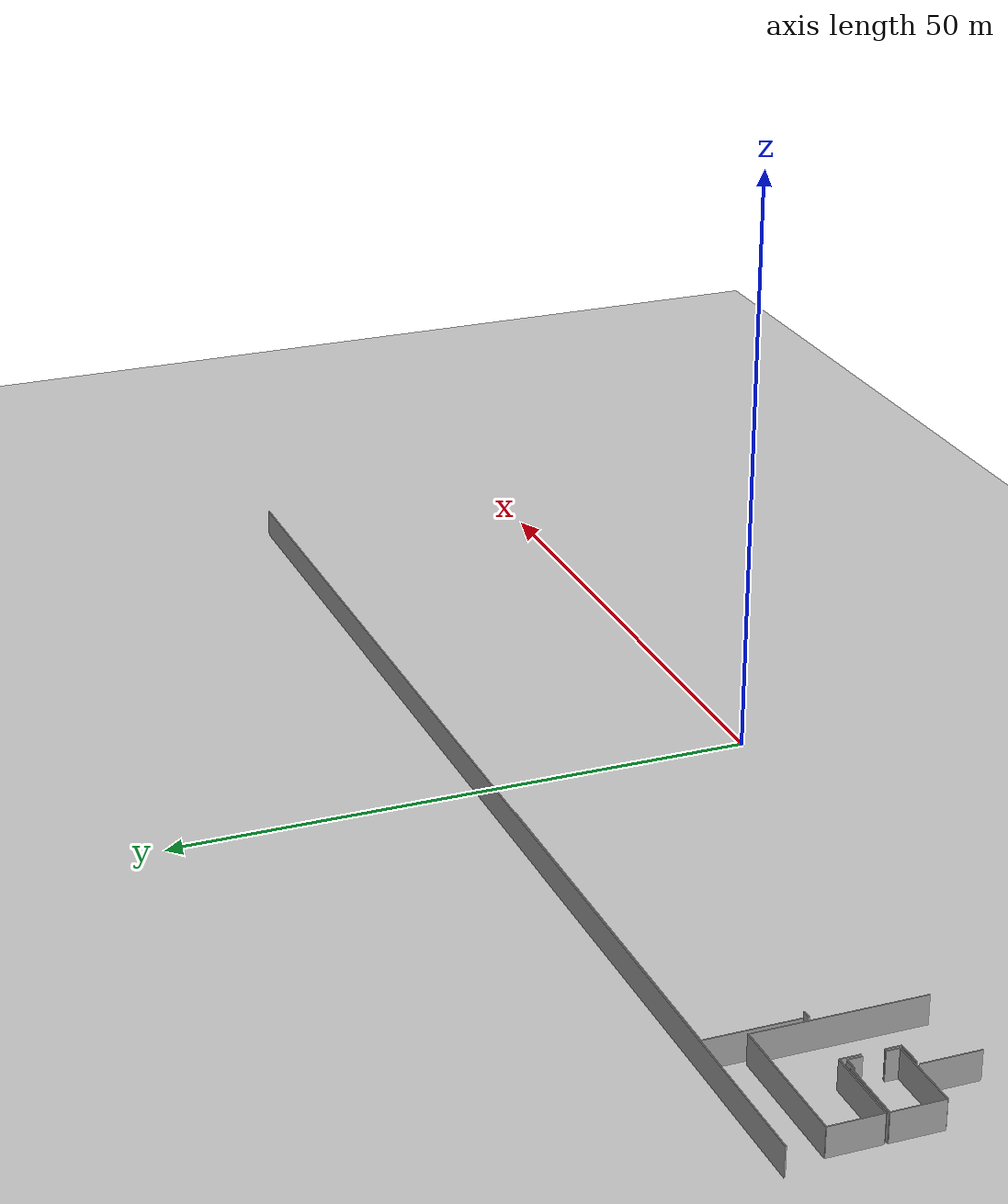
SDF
<sdf version="1.6">
 <world name="default">
  <model name="ground_plane">
   <static>1</static>
   <link name="link">
    <collision name="collision">
     <geometry><plane><normal>0 0 1</normal><size>100 100</size></plane></geometry>
     <surface><friction><ode><mu>100</mu><mu2>50</mu2></ode></friction></surface>
    </collision>
    <visual name="visual">
     <cast_shadows>0</cast_shadows>
     <geometry><plane><normal>0 0 1</normal><size>100 100</size></plane></geometry>
     <material>
      <script><uri>file://media/materials/scripts/gazebo.material</uri><name>Gazebo/Grey</name></script>
     </material>
    </visual>
   </link>
  </model>
  <model name="50057022">
   <static>1</static>
   <link name="Wall_0">
    <collision name="Wall_0_Collision">
     <geometry><box><size>4.35774991319 0.1 2.5</size></box></geometry>
     <pose>2.17887495659 0 1.25 0 0 0</pose>
    </collision>
    <visual name="Wall_0_Visual">
     <pose>2.17887495659 0 1.25 0 0 0</pose>
     <geometry><box><size>4.35774991319 0.1 2.5</size></box></geometry>
     <material>
      <script><uri>file://media/materials/scripts/gazebo.material</uri><name>Gazebo/Grey</name></script>
      <ambient>1 1 1 1</ambient>
     </material>
    </visual>
    <pose>1.04935783863 -12.5339964058 0 0 0 1.57079632679</pose>
   </link>
   <link name="Wall_1">
    <collision name="Wall_1_Collision">
     <geometry><box><size>5.58200072492 0.1 2.5</size></box></geometry>
     <pose>2.79100036246 0 1.25 0 0 0</pose>
    </collision>
    <visual name="Wall_1_Visual">
     <pose>2.79100036246 0 1.25 0 0 0</pose>
     <geometry><box><size>5.58200072492 0.1 2.5</size></box></geometry>
     <material>
      <script><uri>file://media/materials/scripts/gazebo.material</uri><name>Gazebo/Grey</name></script>
      <ambient>1 1 1 1</ambient>
     </material>
    </visual>
    <pose>1.04935783863 -8.17624649264 0 0 0 0.0</pose>
   </link>
   <link name="Wall_2">
    <collision name="Wall_2_Collision">
     <geometry><box><size>0.218616216381 0.1 2.5</size></box></geometry>
     <pose>0.10930810819 0 1.25 0 0 0</pose>
    </collision>
    <visual name="Wall_2_Visual">
     <pose>0.10930810819 0 1.25 0 0 0</pose>
     <geometry><box><size>0.218616216381 0.1 2.5</size></box></geometry>
     <material>
      <script><uri>file://media/materials/scripts/gazebo.material</uri><name>Gazebo/Grey</name></script>
      <ambient>1 1 1 1</ambient>
     </material>
    </visual>
    <pose>6.63135856355 -8.17624649264 0 0 0 -1.57079632679</pose>
   </link>
   <link name="Wall_3">
    <collision name="Wall_3_Collision">
     <geometry><box><size>1.0347834242 0.1 2.5</size></box></geometry>
     <pose>0.517391712101 0 1.25 0 0 0</pose>
    </collision>
    <visual name="Wall_3_Visual">
     <pose>0.517391712101 0 1.25 0 0 0</pose>
     <geometry><box><size>1.0347834242 0.1 2.5</size></box></geometry>
     <material>
      <script><uri>file://media/materials/scripts/gazebo.material</uri><name>Gazebo/Grey</name></script>
      <ambient>1 1 1 1</ambient>
     </material>
    </visual>
    <pose>6.63135856355 -8.39486270902 0 0 0 0.0</pose>
   </link>
   <link name="Wall_4">
    <collision name="Wall_4_Collision">
     <geometry><box><size>1.19510198288 0.1 2.5</size></box></geometry>
     <pose>0.59755099144 0 1.25 0 0 0</pose>
    </collision>
    <visual name="Wall_4_Visual">
     <pose>0.59755099144 0 1.25 0 0 0</pose>
     <geometry><box><size>1.19510198288 0.1 2.5</size></box></geometry>
     <material>
      <script><uri>file://media/materials/scripts/gazebo.material</uri><name>Gazebo/Grey</name></script>
      <ambient>1 1 1 1</ambient>
     </material>
    </visual>
    <pose>7.66614198775 -8.39486270902 0 0 0 -1.57079632679</pose>
   </link>
   <link name="Wall_5">
    <collision name="Wall_5_Collision">
     <geometry><box><size>1.11525953864 0.1 2.5</size></box></geometry>
     <pose>0.557629769319 0 1.25 0 0 0</pose>
    </collision>
    <visual name="Wall_5_Visual">
     <pose>0.557629769319 0 1.25 0 0 0</pose>
     <geometry><box><size>1.11525953864 0.1 2.5</size></box></geometry>
     <material>
      <script><uri>file://media/materials/scripts/gazebo.material</uri><name>Gazebo/Grey</name></script>
      <ambient>1 1 1 1</ambient>
     </material>
    </visual>
    <pose>7.66614198775 -11.3750136239 0 0 0 -1.57079632679</pose>
   </link>
   <link name="Wall_6">
    <collision name="Wall_6_Collision">
     <geometry><box><size>6.6169286076 0.1 2.5</size></box></geometry>
     <pose>3.3084643038 0 1.25 0 0 0</pose>
    </collision>
    <visual name="Wall_6_Visual">
     <pose>3.3084643038 0 1.25 0 0 0</pose>
     <geometry><box><size>6.6169286076 0.1 2.5</size></box></geometry>
     <material>
      <script><uri>file://media/materials/scripts/gazebo.material</uri><name>Gazebo/Grey</name></script>
      <ambient>1 1 1 1</ambient>
     </material>
    </visual>
    <pose>7.66614198775 -12.4902731625 0 0 0 -3.13498482025</pose>
   </link>
   <link name="Wall_11">
    <collision name="Wall_11_Collision">
     <geometry><box><size>4.9407264902 0.1 2.5</size></box></geometry>
     <pose>2.4703632451 0 1.25 0 0 0</pose>
    </collision>
    <visual name="Wall_11_Visual">
     <pose>2.4703632451 0 1.25 0 0 0</pose>
     <geometry><box><size>4.9407264902 0.1 2.5</size></box></geometry>
     <material>
      <script><uri>file://media/materials/scripts/gazebo.material</uri><name>Gazebo/Grey</name></script>
      <ambient>1 1 1 1</ambient>
     </material>
    </visual>
    <pose>5.43625658066 -12.7526126222 0 0 0 -1.57079632679</pose>
   </link>
   <link name="Wall_15">
    <collision name="Wall_15_Collision">
     <geometry><box><size>2.19744149323 0.1 2.5</size></box></geometry>
     <pose>1.09872074662 0 1.25 0 0 0</pose>
    </collision>
    <visual name="Wall_15_Visual">
     <pose>1.09872074662 0 1.25 0 0 0</pose>
     <geometry><box><size>2.19744149323 0.1 2.5</size></box></geometry>
     <material>
      <script><uri>file://media/materials/scripts/gazebo.material</uri><name>Gazebo/Grey</name></script>
      <ambient>1 1 1 1</ambient>
     </material>
    </visual>
    <pose>5.71608533763 -12.7298004953 0 0 0 0.0</pose>
   </link>
   <link name="Wall_16">
    <collision name="Wall_16_Collision">
     <geometry><box><size>1.2857168204 0.1 2.5</size></box></geometry>
     <pose>0.642858410198 0 1.25 0 0 0</pose>
    </collision>
    <visual name="Wall_16_Visual">
     <pose>0.642858410198 0 1.25 0 0 0</pose>
     <geometry><box><size>1.2857168204 0.1 2.5</size></box></geometry>
     <material>
      <script><uri>file://media/materials/scripts/gazebo.material</uri><name>Gazebo/Grey</name></script>
      <ambient>1 1 1 1</ambient>
     </material>
    </visual>
    <pose>7.91352683086 -12.7298004953 0 0 0 1.57079632679</pose>
   </link>
   <link name="Wall_17">
    <collision name="Wall_17_Collision">
     <geometry><box><size>1.70812137065 0.1 2.5</size></box></geometry>
     <pose>0.854060685327 0 1.25 0 0 0</pose>
    </collision>
    <visual name="Wall_17_Visual">
     <pose>0.854060685327 0 1.25 0 0 0</pose>
     <geometry><box><size>1.70812137065 0.1 2.5</size></box></geometry>
     <material>
      <script><uri>file://media/materials/scripts/gazebo.material</uri><name>Gazebo/Grey</name></script>
      <ambient>1 1 1 1</ambient>
     </material>
    </visual>
    <pose>7.91352683086 -9.60897479767 0 0 0 1.57079632679</pose>
   </link>
   <link name="Wall_18">
    <collision name="Wall_18_Collision">
     <geometry><box><size>6.8492143757 0.1 2.5</size></box></geometry>
     <pose>3.42460718785 0 1.25 0 0 0</pose>
    </collision>
    <visual name="Wall_18_Visual">
     <pose>3.42460718785 0 1.25 0 0 0</pose>
     <geometry><box><size>6.8492143757 0.1 2.5</size></box></geometry>
     <material>
      <script><uri>file://media/materials/scripts/gazebo.material</uri><name>Gazebo/Grey</name></script>
      <ambient>1 1 1 1</ambient>
     </material>
    </visual>
    <pose>7.91352683086 -7.90085342702 0 0 0 3.14159265359</pose>
   </link>
   <link name="Wall_19">
    <collision name="Wall_19_Collision">
     <geometry><box><size>4.43733888935 0.1 2.5</size></box></geometry>
     <pose>2.21866944468 0 1.25 0 0 0</pose>
    </collision>
    <visual name="Wall_19_Visual">
     <pose>2.21866944468 0 1.25 0 0 0</pose>
     <geometry><box><size>4.43733888935 0.1 2.5</size></box></geometry>
     <material>
      <script><uri>file://media/materials/scripts/gazebo.material</uri><name>Gazebo/Grey</name></script>
      <ambient>1 1 1 1</ambient>
     </material>
    </visual>
    <pose>1.06431245517 -7.90085342702 0 0 0 1.57079632679</pose>
   </link>
   <link name="Wall_20">
    <collision name="Wall_20_Collision">
     <geometry><box><size>11.9184491809 0.1 2.5</size></box></geometry>
     <pose>5.95922459046 0 1.25 0 0 0</pose>
    </collision>
    <visual name="Wall_20_Visual">
     <pose>5.95922459046 0 1.25 0 0 0</pose>
     <geometry><box><size>11.9184491809 0.1 2.5</size></box></geometry>
     <material>
      <script><uri>file://media/materials/scripts/gazebo.material</uri><name>Gazebo/Grey</name></script>
      <ambient>1 1 1 1</ambient>
     </material>
    </visual>
    <pose>1.06431245517 -3.46351453766 0 0 0 0.0</pose>
   </link>
   <link name="Wall_21">
    <collision name="Wall_21_Collision">
     <geometry><box><size>14.2246284792 0.1 2.5</size></box></geometry>
     <pose>7.11231423958 0 1.25 0 0 0</pose>
    </collision>
    <visual name="Wall_21_Visual">
     <pose>7.11231423958 0 1.25 0 0 0</pose>
     <geometry><box><size>14.2246284792 0.1 2.5</size></box></geometry>
     <material>
      <script><uri>file://media/materials/scripts/gazebo.material</uri><name>Gazebo/Grey</name></script>
      <ambient>1 1 1 1</ambient>
     </material>
    </visual>
    <pose>12.9827616361 -3.46351453766 0 0 0 -1.57079632679</pose>
   </link>
   <link name="Wall_25">
    <collision name="Wall_25_Collision">
     <geometry><box><size>0.759770560697 0.1 2.5</size></box></geometry>
     <pose>0.379885280348 0 1.25 0 0 0</pose>
    </collision>
    <visual name="Wall_25_Visual">
     <pose>0.379885280348 0 1.25 0 0 0</pose>
     <geometry><box><size>0.759770560697 0.1 2.5</size></box></geometry>
     <material>
      <script><uri>file://media/materials/scripts/gazebo.material</uri><name>Gazebo/Grey</name></script>
      <ambient>1 1 1 1</ambient>
     </material>
    </visual>
    <pose>13.4549726635 -8.39676371959 0 0 0 0.0</pose>
   </link>
   <link name="Wall_28">
    <collision name="Wall_28_Collision">
     <geometry><box><size>7.83545866316 0.1 2.5</size></box></geometry>
     <pose>3.91772933158 0 1.25 0 0 0</pose>
    </collision>
    <visual name="Wall_28_Visual">
     <pose>3.91772933158 0 1.25 0 0 0</pose>
     <geometry><box><size>7.83545866316 0.1 2.5</size></box></geometry>
     <material>
      <script><uri>file://media/materials/scripts/gazebo.material</uri><name>Gazebo/Grey</name></script>
      <ambient>1 1 1 1</ambient>
     </material>
    </visual>
    <pose>13.4322872706 -7.90085342702 0 0 0 1.57079632679</pose>
   </link>
   <link name="Wall_29">
    <collision name="Wall_29_Collision">
     <geometry><box><size>34.9782144188 0.1 2.5</size></box></geometry>
     <pose>17.4891072094 0 1.25 0 0 0</pose>
    </collision>
    <visual name="Wall_29_Visual">
     <pose>17.4891072094 0 1.25 0 0 0</pose>
     <geometry><box><size>34.9782144188 0.1 2.5</size></box></geometry>
     <material>
      <script><uri>file://media/materials/scripts/gazebo.material</uri><name>Gazebo/Grey</name></script>
      <ambient>1 1 1 1</ambient>
     </material>
    </visual>
    <pose>13.4322872706 -0.0653947638565 0 0 0 0.0</pose>
   </link>
   <link name="Wall_673">
    <collision name="Wall_673_Collision">
     <geometry><box><size>112.83194813 0.1 2.5</size></box></geometry>
     <pose>56.4159740651 0 1.25 0 0 0</pose>
    </collision>
    <visual name="Wall_673_Visual">
     <pose>56.4159740651 0 1.25 0 0 0</pose>
     <geometry><box><size>112.83194813 0.1 2.5</size></box></geometry>
     <material>
      <script><uri>file://media/materials/scripts/gazebo.material</uri><name>Gazebo/Grey</name></script>
      <ambient>1 1 1 1</ambient>
     </material>
    </visual>
   </link>
   <pose>-56.55 23.8342557037 0 0 0 0</pose>
  </model>
 </world>
</sdf>
